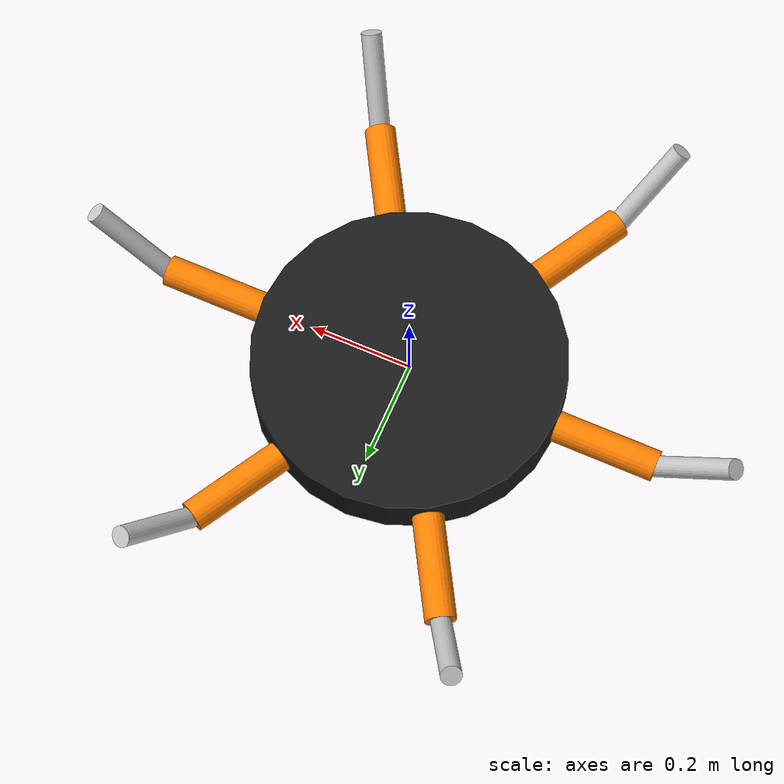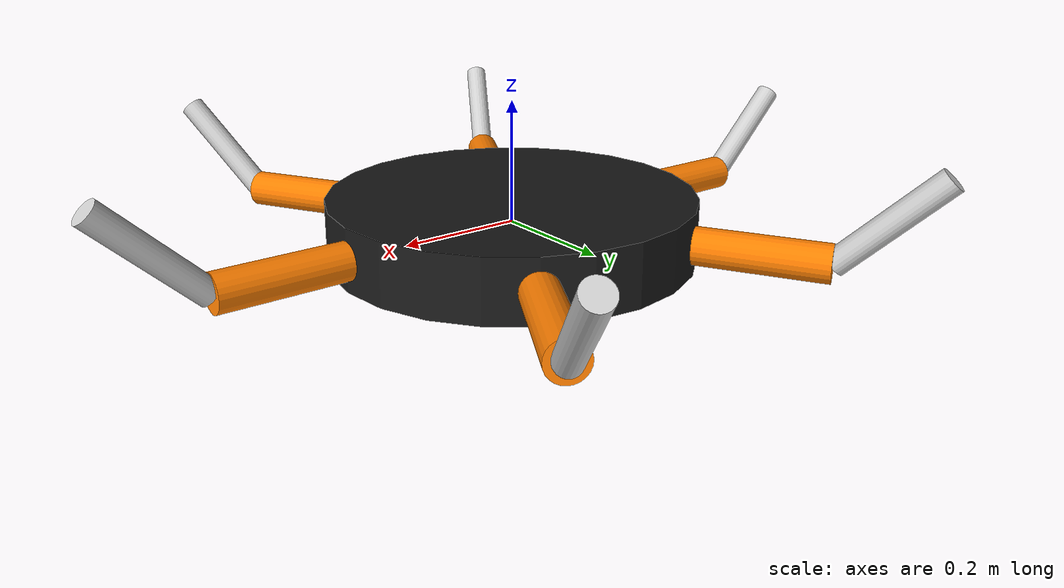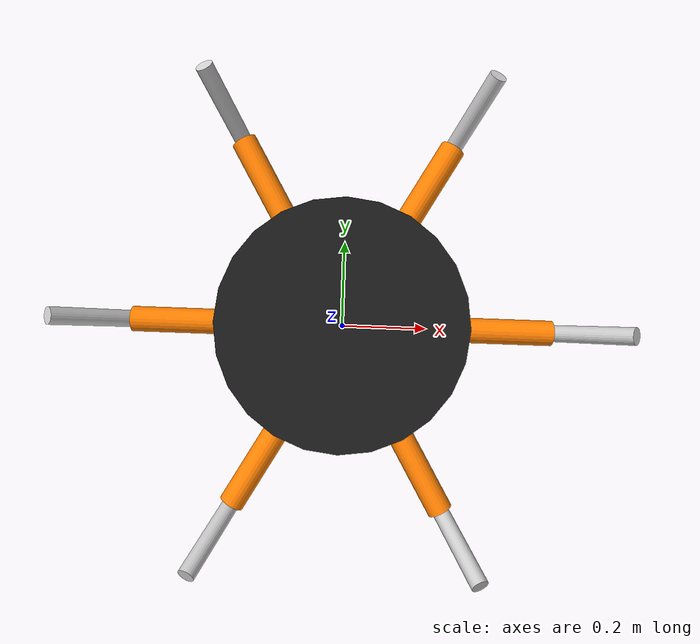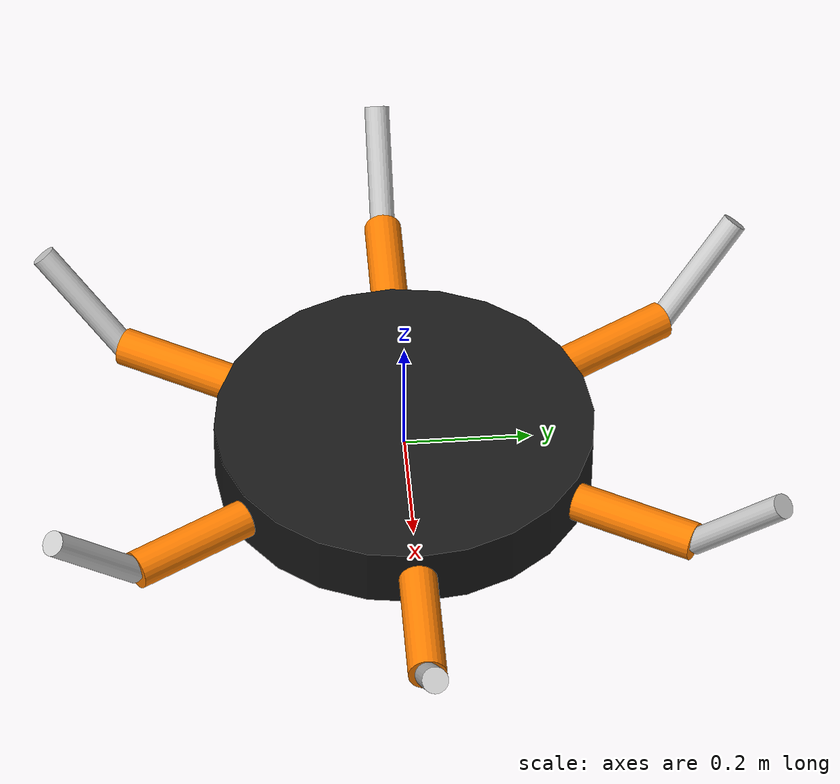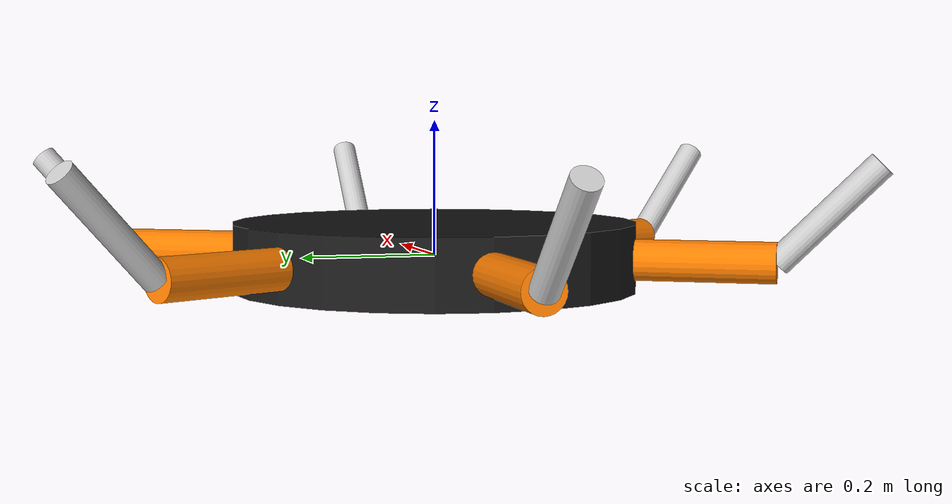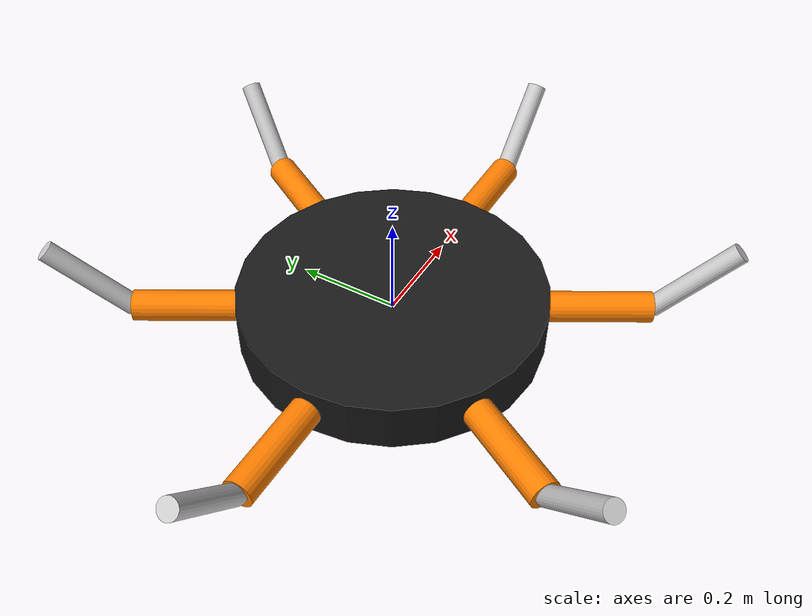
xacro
<?xml version="1.0"?>
<robot xmlns:xacro="http://www.ros.org/wiki/xacro" name="spider_bot">

  <xacro:include filename="$(find spider_robot)/common.xacro" />
  <xacro:include filename="$(find spider_robot)/leg.xacro" />

  <!-- Central Body -->
  <link name="base_link">
    <visual>
      <geometry>
        <cylinder radius="${body_radius}" length="${body_height}"/>
      </geometry>
      <material name="black"/>
    </visual>
  </link>

  <xacro:spider_leg side="right" num="1" angle="0"/>
  <xacro:spider_leg side="right" num="2" angle="${PI/3}"/>
  <xacro:spider_leg side="right" num="3" angle="${2*PI/3}"/>
  <xacro:spider_leg side="left" num="1" angle="${PI}"/>
  <xacro:spider_leg side="left" num="2" angle="${4*PI/3}"/>
  <xacro:spider_leg side="left" num="3" angle="${5*PI/3}"/>

</robot>

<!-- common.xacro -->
<robot xmlns:xacro="http://www.ros.org/wiki/xacro">
  <xacro:property name="PI" value="3.1415926535897931" />
  <xacro:property name="body_radius" value="0.3" />
  <xacro:property name="body_height" value="0.1" />

  <material name="black">
    <color rgba="0.1 0.1 0.1 1"/>
  </material>
  <material name="orange">
    <color rgba="1.0 0.5 0.0 1"/>
  </material>
  <material name="silver">
    <color rgba="0.8 0.8 0.8 1"/>
  </material>
</robot>

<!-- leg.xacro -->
<robot xmlns:xacro="http://www.ros.org/wiki/xacro">
  <xacro:macro name="spider_leg" params="side num angle">
    <!-- Hip Joint -->
    <joint name="hip_${side}_${num}" type="revolute">
      <parent link="base_link"/>
      <child link="thigh_${side}_${num}"/>
      <origin xyz="${body_radius * cos(angle)} ${body_radius * sin(angle)} 0" rpy="0 0 ${angle}"/>
      <axis xyz="0 0 1"/>
      <limit lower="${-PI/4}" upper="${PI/4}" effort="10" velocity="1"/>
    </joint>

    <link name="thigh_${side}_${num}">
      <visual>
        <origin xyz="0.1 0 0" rpy="0 ${PI/2} 0"/>
        <geometry><cylinder radius="0.03" length="0.2"/></geometry>
        <material name="orange"/>
      </visual>
    </link>

    <!-- Knee Joint -->
    <joint name="knee_${side}_${num}" type="revolute">
      <parent link="thigh_${side}_${num}"/>
      <child link="shink_${side}_${num}"/>
      <origin xyz="0.2 0 0" rpy="0 ${-PI/4} 0"/>
      <axis xyz="0 1 0"/>
      <limit lower="${-PI/2}" upper="${PI/2}" effort="10" velocity="1"/>
    </joint>

    <link name="shink_${side}_${num}">
      <visual>
        <origin xyz="0.1 0 0" rpy="0 ${PI/2} 0"/>
        <geometry><cylinder radius="0.02" length="0.2"/></geometry>
        <material name="silver"/>
      </visual>
    </link>
  </xacro:macro>
</robot>
